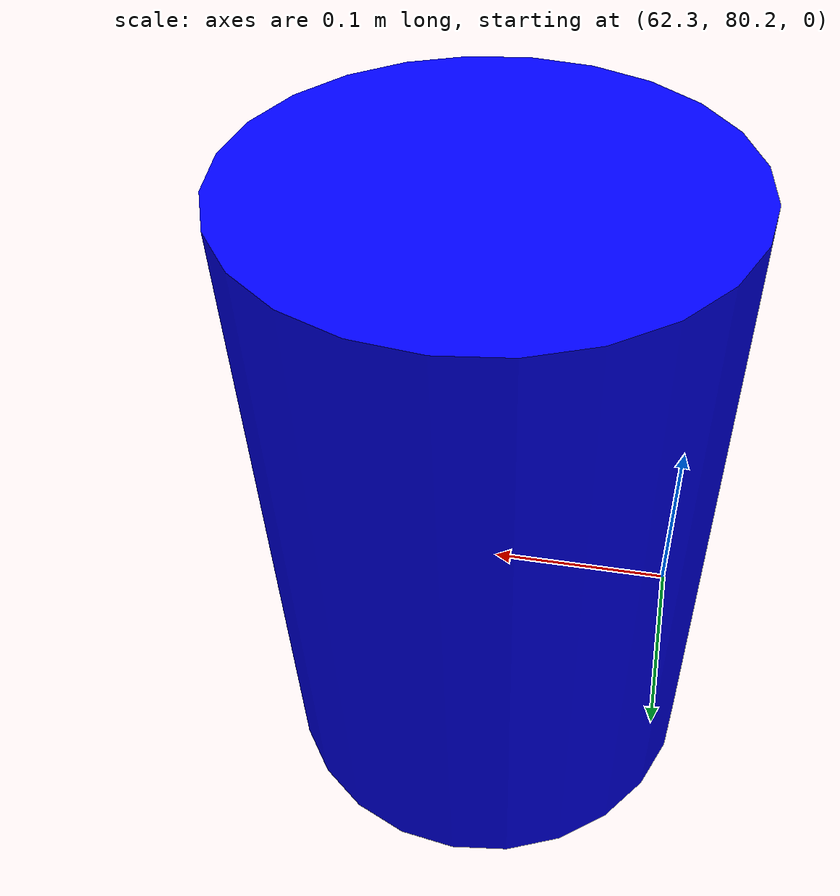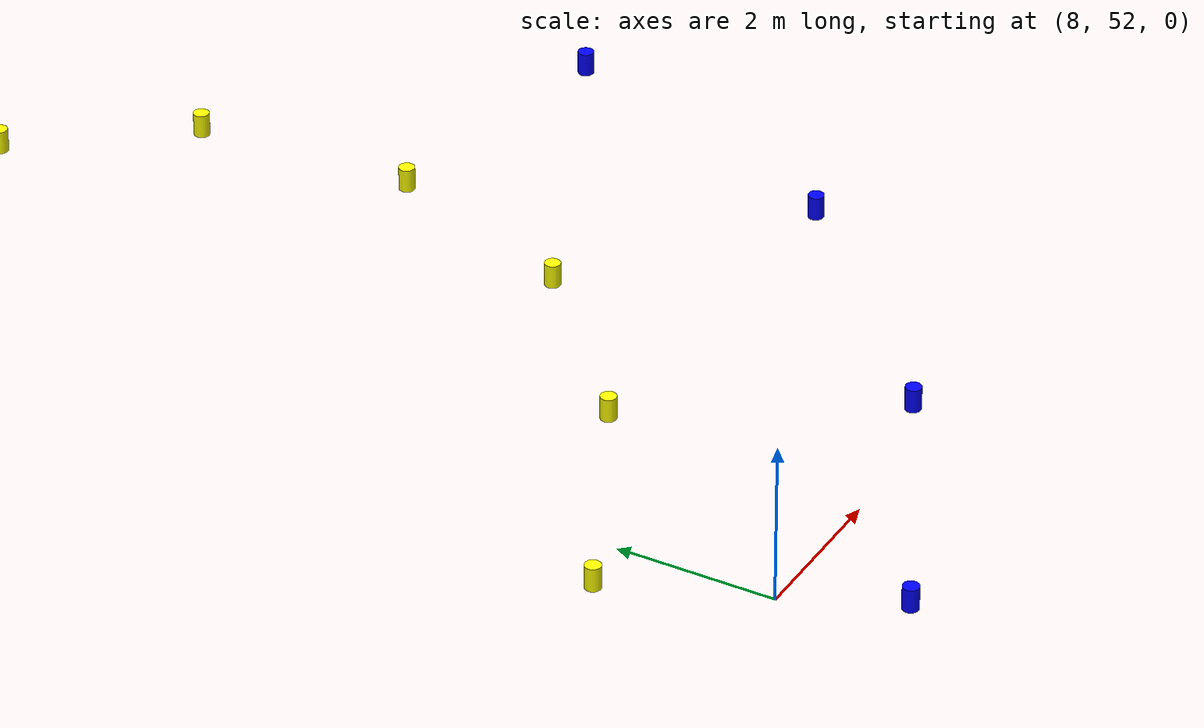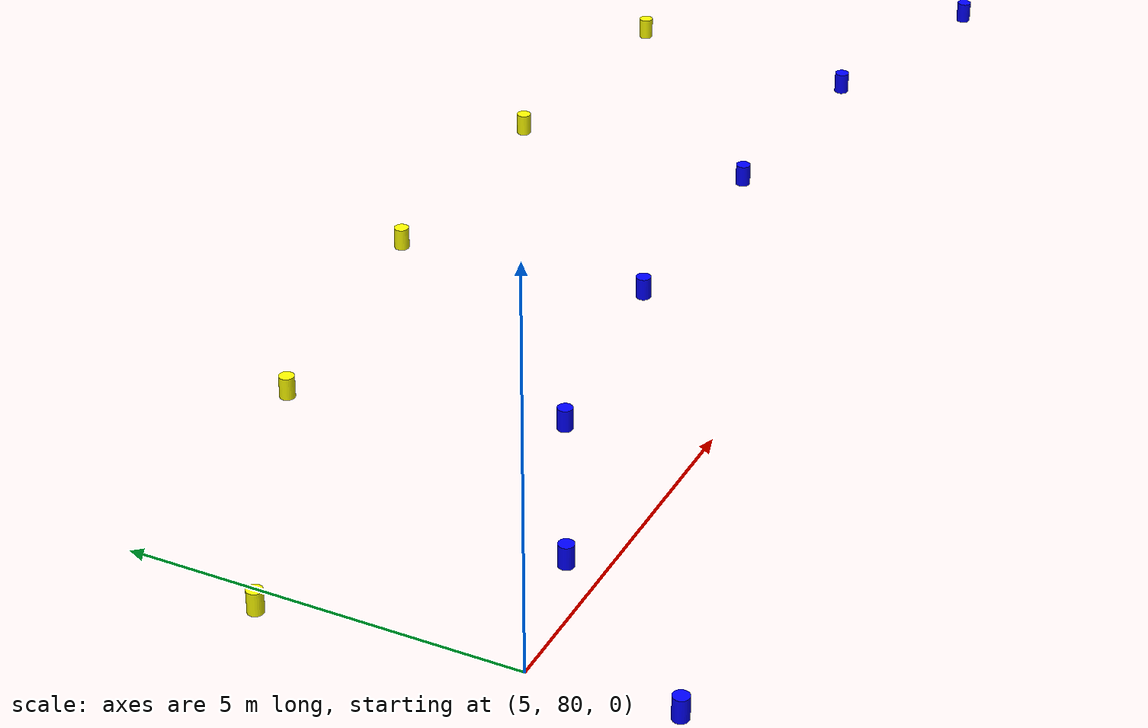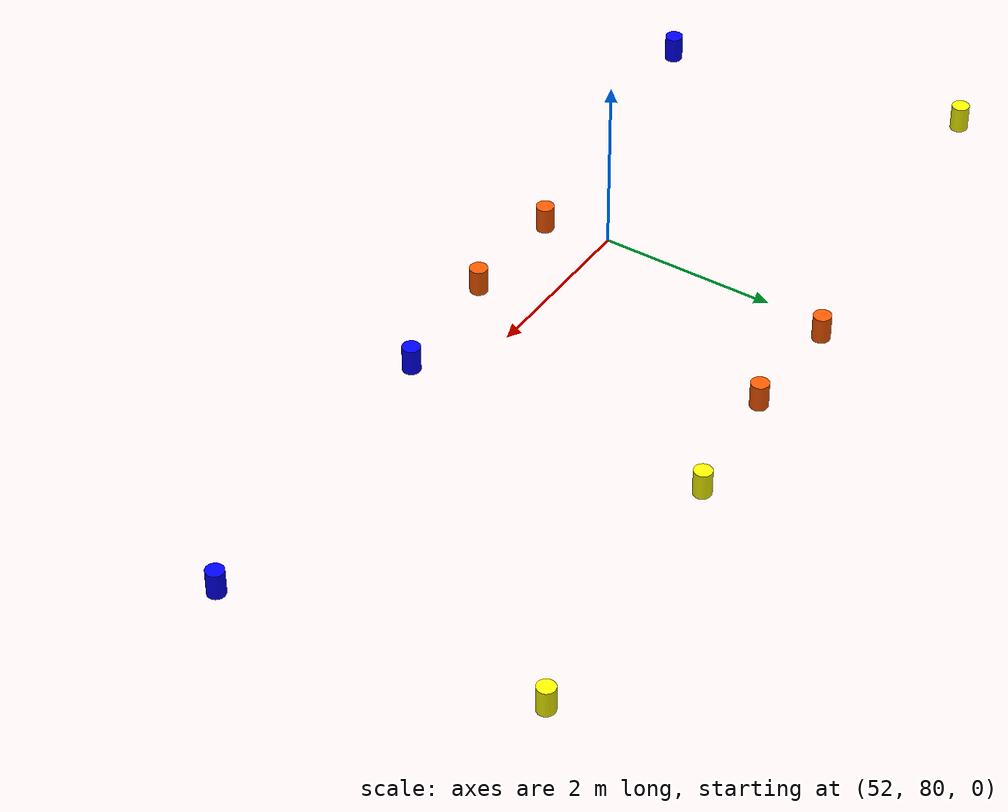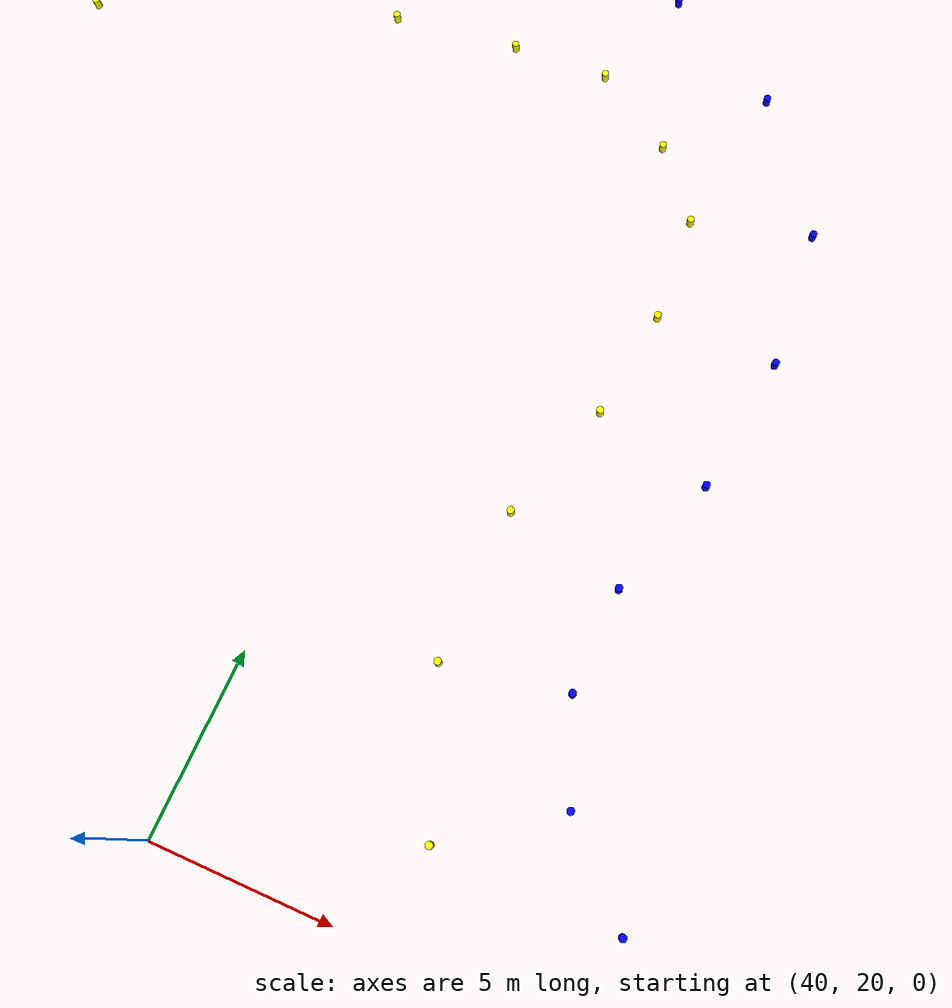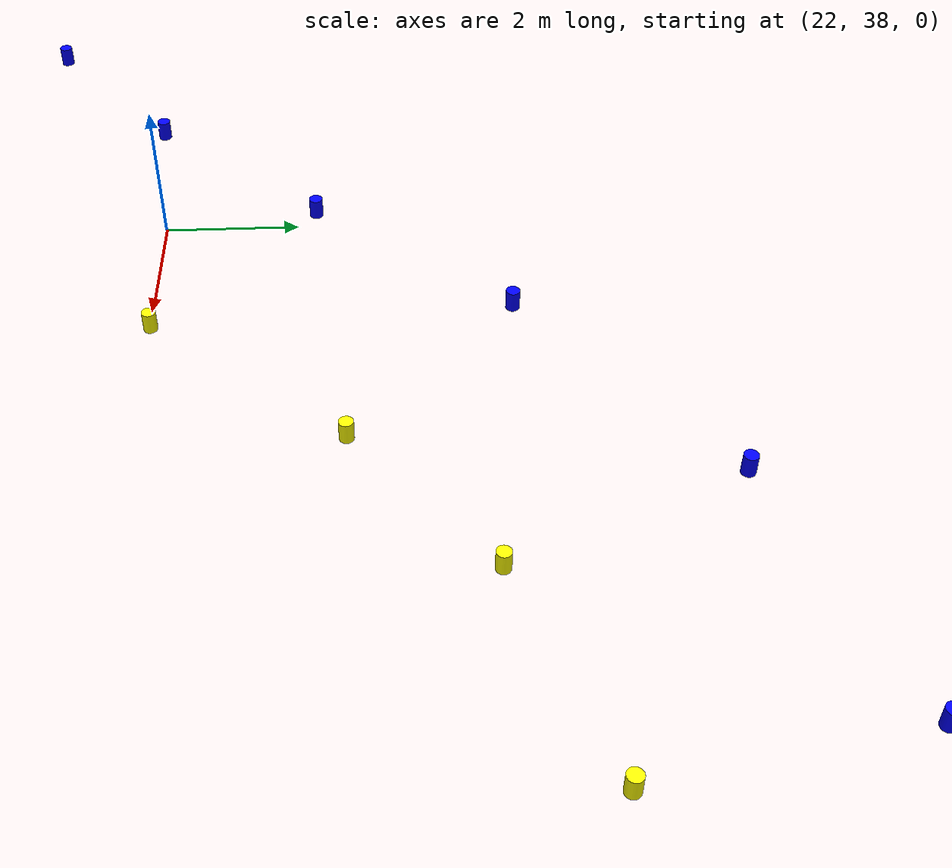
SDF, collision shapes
<?xml version="1.0"?>
<sdf version="1.7">
  <model name="track_competitionmap3">
    <static>true</static>

    <include>
      <uri>model://cone_yellow</uri>
      <name>cone_yellow_001</name>
      <pose>54.953 82.950 0.000 0 0 0.000</pose>
    </include>
    <include>
      <uri>model://cone_yellow</uri>
      <name>cone_yellow_002</name>
      <pose>58.274 83.264 0.000 0 0 0.000</pose>
    </include>
    <include>
      <uri>model://cone_yellow</uri>
      <name>cone_yellow_003</name>
      <pose>61.905 83.754 0.000 0 0 0.000</pose>
    </include>
    <include>
      <uri>model://cone_yellow</uri>
      <name>cone_yellow_004</name>
      <pose>65.535 84.262 0.000 0 0 0.000</pose>
    </include>
    <include>
      <uri>model://cone_yellow</uri>
      <name>cone_yellow_005</name>
      <pose>69.184 84.759 0.000 0 0 0.000</pose>
    </include>
    <include>
      <uri>model://cone_yellow</uri>
      <name>cone_yellow_006</name>
      <pose>72.850 85.223 0.000 0 0 0.000</pose>
    </include>
    <include>
      <uri>model://cone_yellow</uri>
      <name>cone_yellow_007</name>
      <pose>76.522 85.634 0.000 0 0 0.000</pose>
    </include>
    <include>
      <uri>model://cone_yellow</uri>
      <name>cone_yellow_008</name>
      <pose>80.190 85.964 0.000 0 0 0.000</pose>
    </include>
    <include>
      <uri>model://cone_yellow</uri>
      <name>cone_yellow_009</name>
      <pose>83.930 86.172 0.000 0 0 0.000</pose>
    </include>
    <include>
      <uri>model://cone_yellow</uri>
      <name>cone_yellow_010</name>
      <pose>87.726 86.154 0.000 0 0 0.000</pose>
    </include>
    <include>
      <uri>model://cone_yellow</uri>
      <name>cone_yellow_011</name>
      <pose>91.672 85.581 0.000 0 0 0.000</pose>
    </include>
    <include>
      <uri>model://cone_yellow</uri>
      <name>cone_yellow_012</name>
      <pose>95.307 84.546 0.000 0 0 0.000</pose>
    </include>
    <include>
      <uri>model://cone_yellow</uri>
      <name>cone_yellow_013</name>
      <pose>98.966 82.929 0.000 0 0 0.000</pose>
    </include>
    <include>
      <uri>model://cone_yellow</uri>
      <name>cone_yellow_014</name>
      <pose>102.146 80.327 0.000 0 0 0.000</pose>
    </include>
    <include>
      <uri>model://cone_yellow</uri>
      <name>cone_yellow_015</name>
      <pose>104.691 77.249 0.000 0 0 0.000</pose>
    </include>
    <include>
      <uri>model://cone_yellow</uri>
      <name>cone_yellow_016</name>
      <pose>106.264 73.316 0.000 0 0 0.000</pose>
    </include>
    <include>
      <uri>model://cone_yellow</uri>
      <name>cone_yellow_017</name>
      <pose>106.670 69.363 0.000 0 0 0.000</pose>
    </include>
    <include>
      <uri>model://cone_yellow</uri>
      <name>cone_yellow_018</name>
      <pose>106.411 65.431 0.000 0 0 0.000</pose>
    </include>
    <include>
      <uri>model://cone_yellow</uri>
      <name>cone_yellow_019</name>
      <pose>105.710 61.725 0.000 0 0 0.000</pose>
    </include>
    <include>
      <uri>model://cone_yellow</uri>
      <name>cone_yellow_020</name>
      <pose>104.862 58.125 0.000 0 0 0.000</pose>
    </include>
    <include>
      <uri>model://cone_yellow</uri>
      <name>cone_yellow_021</name>
      <pose>103.995 54.582 0.000 0 0 0.000</pose>
    </include>
    <include>
      <uri>model://cone_yellow</uri>
      <name>cone_yellow_022</name>
      <pose>103.295 51.147 0.000 0 0 0.000</pose>
    </include>
    <include>
      <uri>model://cone_yellow</uri>
      <name>cone_yellow_023</name>
      <pose>102.834 47.591 0.000 0 0 0.000</pose>
    </include>
    <include>
      <uri>model://cone_yellow</uri>
      <name>cone_yellow_024</name>
      <pose>102.096 43.692 0.000 0 0 0.000</pose>
    </include>
    <include>
      <uri>model://cone_yellow</uri>
      <name>cone_yellow_025</name>
      <pose>99.857 39.902 0.000 0 0 0.000</pose>
    </include>
    <include>
      <uri>model://cone_yellow</uri>
      <name>cone_yellow_026</name>
      <pose>96.774 37.388 0.000 0 0 0.000</pose>
    </include>
    <include>
      <uri>model://cone_yellow</uri>
      <name>cone_yellow_027</name>
      <pose>93.807 35.191 0.000 0 0 0.000</pose>
    </include>
    <include>
      <uri>model://cone_yellow</uri>
      <name>cone_yellow_028</name>
      <pose>89.820 33.503 0.000 0 0 0.000</pose>
    </include>
    <include>
      <uri>model://cone_yellow</uri>
      <name>cone_yellow_029</name>
      <pose>85.585 33.740 0.000 0 0 0.000</pose>
    </include>
    <include>
      <uri>model://cone_yellow</uri>
      <name>cone_yellow_030</name>
      <pose>82.455 33.970 0.000 0 0 0.000</pose>
    </include>
    <include>
      <uri>model://cone_yellow</uri>
      <name>cone_yellow_031</name>
      <pose>79.788 32.875 0.000 0 0 0.000</pose>
    </include>
    <include>
      <uri>model://cone_yellow</uri>
      <name>cone_yellow_032</name>
      <pose>77.029 30.887 0.000 0 0 0.000</pose>
    </include>
    <include>
      <uri>model://cone_yellow</uri>
      <name>cone_yellow_033</name>
      <pose>74.434 28.543 0.000 0 0 0.000</pose>
    </include>
    <include>
      <uri>model://cone_yellow</uri>
      <name>cone_yellow_034</name>
      <pose>72.369 26.116 0.000 0 0 0.000</pose>
    </include>
    <include>
      <uri>model://cone_yellow</uri>
      <name>cone_yellow_035</name>
      <pose>70.844 22.994 0.000 0 0 0.000</pose>
    </include>
    <include>
      <uri>model://cone_yellow</uri>
      <name>cone_yellow_036</name>
      <pose>68.550 19.424 0.000 0 0 0.000</pose>
    </include>
    <include>
      <uri>model://cone_yellow</uri>
      <name>cone_yellow_037</name>
      <pose>64.732 17.259 0.000 0 0 0.000</pose>
    </include>
    <include>
      <uri>model://cone_yellow</uri>
      <name>cone_yellow_038</name>
      <pose>60.807 16.366 0.000 0 0 0.000</pose>
    </include>
    <include>
      <uri>model://cone_yellow</uri>
      <name>cone_yellow_039</name>
      <pose>56.724 16.354 0.000 0 0 0.000</pose>
    </include>
    <include>
      <uri>model://cone_yellow</uri>
      <name>cone_yellow_040</name>
      <pose>52.744 17.595 0.000 0 0 0.000</pose>
    </include>
    <include>
      <uri>model://cone_yellow</uri>
      <name>cone_yellow_041</name>
      <pose>49.323 19.665 0.000 0 0 0.000</pose>
    </include>
    <include>
      <uri>model://cone_yellow</uri>
      <name>cone_yellow_042</name>
      <pose>46.344 22.572 0.000 0 0 0.000</pose>
    </include>
    <include>
      <uri>model://cone_yellow</uri>
      <name>cone_yellow_043</name>
      <pose>44.678 26.651 0.000 0 0 0.000</pose>
    </include>
    <include>
      <uri>model://cone_yellow</uri>
      <name>cone_yellow_044</name>
      <pose>44.788 30.981 0.000 0 0 0.000</pose>
    </include>
    <include>
      <uri>model://cone_yellow</uri>
      <name>cone_yellow_045</name>
      <pose>45.890 34.479 0.000 0 0 0.000</pose>
    </include>
    <include>
      <uri>model://cone_yellow</uri>
      <name>cone_yellow_046</name>
      <pose>46.293 37.699 0.000 0 0 0.000</pose>
    </include>
    <include>
      <uri>model://cone_yellow</uri>
      <name>cone_yellow_047</name>
      <pose>46.069 40.834 0.000 0 0 0.000</pose>
    </include>
    <include>
      <uri>model://cone_yellow</uri>
      <name>cone_yellow_048</name>
      <pose>44.447 42.809 0.000 0 0 0.000</pose>
    </include>
    <include>
      <uri>model://cone_yellow</uri>
      <name>cone_yellow_049</name>
      <pose>41.973 44.404 0.000 0 0 0.000</pose>
    </include>
    <include>
      <uri>model://cone_yellow</uri>
      <name>cone_yellow_050</name>
      <pose>39.091 44.315 0.000 0 0 0.000</pose>
    </include>
    <include>
      <uri>model://cone_yellow</uri>
      <name>cone_yellow_051</name>
      <pose>35.345 43.888 0.000 0 0 0.000</pose>
    </include>
    <include>
      <uri>model://cone_yellow</uri>
      <name>cone_yellow_052</name>
      <pose>31.952 43.726 0.000 0 0 0.000</pose>
    </include>
    <include>
      <uri>model://cone_yellow</uri>
      <name>cone_yellow_053</name>
      <pose>28.941 42.630 0.000 0 0 0.000</pose>
    </include>
    <include>
      <uri>model://cone_yellow</uri>
      <name>cone_yellow_054</name>
      <pose>26.678 40.779 0.000 0 0 0.000</pose>
    </include>
    <include>
      <uri>model://cone_yellow</uri>
      <name>cone_yellow_055</name>
      <pose>24.370 38.021 0.000 0 0 0.000</pose>
    </include>
    <include>
      <uri>model://cone_yellow</uri>
      <name>cone_yellow_056</name>
      <pose>21.778 35.188 0.000 0 0 0.000</pose>
    </include>
    <include>
      <uri>model://cone_yellow</uri>
      <name>cone_yellow_057</name>
      <pose>18.583 32.701 0.000 0 0 0.000</pose>
    </include>
    <include>
      <uri>model://cone_yellow</uri>
      <name>cone_yellow_058</name>
      <pose>14.620 31.198 0.000 0 0 0.000</pose>
    </include>
    <include>
      <uri>model://cone_yellow</uri>
      <name>cone_yellow_059</name>
      <pose>10.348 31.230 0.000 0 0 0.000</pose>
    </include>
    <include>
      <uri>model://cone_yellow</uri>
      <name>cone_yellow_060</name>
      <pose>6.435 32.463 0.000 0 0 0.000</pose>
    </include>
    <include>
      <uri>model://cone_yellow</uri>
      <name>cone_yellow_061</name>
      <pose>2.991 34.705 0.000 0 0 0.000</pose>
    </include>
    <include>
      <uri>model://cone_yellow</uri>
      <name>cone_yellow_062</name>
      <pose>0.280 37.812 0.000 0 0 0.000</pose>
    </include>
    <include>
      <uri>model://cone_yellow</uri>
      <name>cone_yellow_063</name>
      <pose>-1.455 41.612 0.000 0 0 0.000</pose>
    </include>
    <include>
      <uri>model://cone_yellow</uri>
      <name>cone_yellow_064</name>
      <pose>-1.791 45.935 0.000 0 0 0.000</pose>
    </include>
    <include>
      <uri>model://cone_yellow</uri>
      <name>cone_yellow_065</name>
      <pose>0.227 50.161 0.000 0 0 0.000</pose>
    </include>
    <include>
      <uri>model://cone_yellow</uri>
      <name>cone_yellow_066</name>
      <pose>3.808 52.450 0.000 0 0 0.000</pose>
    </include>
    <include>
      <uri>model://cone_yellow</uri>
      <name>cone_yellow_067</name>
      <pose>7.233 53.869 0.000 0 0 0.000</pose>
    </include>
    <include>
      <uri>model://cone_yellow</uri>
      <name>cone_yellow_068</name>
      <pose>10.239 55.363 0.000 0 0 0.000</pose>
    </include>
    <include>
      <uri>model://cone_yellow</uri>
      <name>cone_yellow_069</name>
      <pose>12.399 57.334 0.000 0 0 0.000</pose>
    </include>
    <include>
      <uri>model://cone_yellow</uri>
      <name>cone_yellow_070</name>
      <pose>13.413 59.947 0.000 0 0 0.000</pose>
    </include>
    <include>
      <uri>model://cone_yellow</uri>
      <name>cone_yellow_071</name>
      <pose>13.277 62.802 0.000 0 0 0.000</pose>
    </include>
    <include>
      <uri>model://cone_yellow</uri>
      <name>cone_yellow_072</name>
      <pose>11.754 64.748 0.000 0 0 0.000</pose>
    </include>
    <include>
      <uri>model://cone_yellow</uri>
      <name>cone_yellow_073</name>
      <pose>8.858 66.227 0.000 0 0 0.000</pose>
    </include>
    <include>
      <uri>model://cone_yellow</uri>
      <name>cone_yellow_074</name>
      <pose>5.325 67.866 0.000 0 0 0.000</pose>
    </include>
    <include>
      <uri>model://cone_yellow</uri>
      <name>cone_yellow_075</name>
      <pose>2.123 71.221 0.000 0 0 0.000</pose>
    </include>
    <include>
      <uri>model://cone_yellow</uri>
      <name>cone_yellow_076</name>
      <pose>1.048 75.354 0.000 0 0 0.000</pose>
    </include>
    <include>
      <uri>model://cone_yellow</uri>
      <name>cone_yellow_077</name>
      <pose>1.913 79.790 0.000 0 0 0.000</pose>
    </include>
    <include>
      <uri>model://cone_yellow</uri>
      <name>cone_yellow_078</name>
      <pose>4.659 83.125 0.000 0 0 0.000</pose>
    </include>
    <include>
      <uri>model://cone_yellow</uri>
      <name>cone_yellow_079</name>
      <pose>8.580 85.097 0.000 0 0 0.000</pose>
    </include>
    <include>
      <uri>model://cone_yellow</uri>
      <name>cone_yellow_080</name>
      <pose>12.506 85.670 0.000 0 0 0.000</pose>
    </include>
    <include>
      <uri>model://cone_yellow</uri>
      <name>cone_yellow_081</name>
      <pose>16.307 85.744 0.000 0 0 0.000</pose>
    </include>
    <include>
      <uri>model://cone_yellow</uri>
      <name>cone_yellow_082</name>
      <pose>20.141 85.539 0.000 0 0 0.000</pose>
    </include>
    <include>
      <uri>model://cone_yellow</uri>
      <name>cone_yellow_083</name>
      <pose>23.979 84.597 0.000 0 0 0.000</pose>
    </include>
    <include>
      <uri>model://cone_yellow</uri>
      <name>cone_yellow_084</name>
      <pose>27.493 83.389 0.000 0 0 0.000</pose>
    </include>
    <include>
      <uri>model://cone_yellow</uri>
      <name>cone_yellow_085</name>
      <pose>30.903 82.204 0.000 0 0 0.000</pose>
    </include>
    <include>
      <uri>model://cone_yellow</uri>
      <name>cone_yellow_086</name>
      <pose>34.257 81.261 0.000 0 0 0.000</pose>
    </include>
    <include>
      <uri>model://cone_yellow</uri>
      <name>cone_yellow_087</name>
      <pose>37.560 80.856 0.000 0 0 0.000</pose>
    </include>
    <include>
      <uri>model://cone_yellow</uri>
      <name>cone_yellow_088</name>
      <pose>40.948 80.977 0.000 0 0 0.000</pose>
    </include>
    <include>
      <uri>model://cone_yellow</uri>
      <name>cone_yellow_089</name>
      <pose>44.393 81.533 0.000 0 0 0.000</pose>
    </include>
    <include>
      <uri>model://cone_yellow</uri>
      <name>cone_yellow_090</name>
      <pose>48.025 82.221 0.000 0 0 0.000</pose>
    </include>
    <include>
      <uri>model://cone_blue</uri>
      <name>cone_blue_001</name>
      <pose>54.961 79.450 0.000 0 0 0.000</pose>
    </include>
    <include>
      <uri>model://cone_blue</uri>
      <name>cone_blue_002</name>
      <pose>58.712 79.792 0.000 0 0 0.000</pose>
    </include>
    <include>
      <uri>model://cone_blue</uri>
      <name>cone_blue_003</name>
      <pose>62.389 80.287 0.000 0 0 0.000</pose>
    </include>
    <include>
      <uri>model://cone_blue</uri>
      <name>cone_blue_004</name>
      <pose>66.018 80.795 0.000 0 0 0.000</pose>
    </include>
    <include>
      <uri>model://cone_blue</uri>
      <name>cone_blue_005</name>
      <pose>69.643 81.289 0.000 0 0 0.000</pose>
    </include>
    <include>
      <uri>model://cone_blue</uri>
      <name>cone_blue_006</name>
      <pose>73.268 81.749 0.000 0 0 0.000</pose>
    </include>
    <include>
      <uri>model://cone_blue</uri>
      <name>cone_blue_007</name>
      <pose>76.878 82.152 0.000 0 0 0.000</pose>
    </include>
    <include>
      <uri>model://cone_blue</uri>
      <name>cone_blue_008</name>
      <pose>80.454 82.474 0.000 0 0 0.000</pose>
    </include>
    <include>
      <uri>model://cone_blue</uri>
      <name>cone_blue_009</name>
      <pose>84.042 82.673 0.000 0 0 0.000</pose>
    </include>
    <include>
      <uri>model://cone_blue</uri>
      <name>cone_blue_010</name>
      <pose>87.545 82.659 0.000 0 0 0.000</pose>
    </include>
    <include>
      <uri>model://cone_blue</uri>
      <name>cone_blue_011</name>
      <pose>90.842 82.181 0.000 0 0 0.000</pose>
    </include>
    <include>
      <uri>model://cone_blue</uri>
      <name>cone_blue_012</name>
      <pose>94.185 81.231 0.000 0 0 0.000</pose>
    </include>
    <include>
      <uri>model://cone_blue</uri>
      <name>cone_blue_013</name>
      <pose>97.188 79.915 0.000 0 0 0.000</pose>
    </include>
    <include>
      <uri>model://cone_blue</uri>
      <name>cone_blue_014</name>
      <pose>99.604 77.920 0.000 0 0 0.000</pose>
    </include>
    <include>
      <uri>model://cone_blue</uri>
      <name>cone_blue_015</name>
      <pose>101.726 75.388 0.000 0 0 0.000</pose>
    </include>
    <include>
      <uri>model://cone_blue</uri>
      <name>cone_blue_016</name>
      <pose>102.843 72.580 0.000 0 0 0.000</pose>
    </include>
    <include>
      <uri>model://cone_blue</uri>
      <name>cone_blue_017</name>
      <pose>103.170 69.297 0.000 0 0 0.000</pose>
    </include>
    <include>
      <uri>model://cone_blue</uri>
      <name>cone_blue_018</name>
      <pose>102.948 65.943 0.000 0 0 0.000</pose>
    </include>
    <include>
      <uri>model://cone_blue</uri>
      <name>cone_blue_019</name>
      <pose>102.291 62.476 0.000 0 0 0.000</pose>
    </include>
    <include>
      <uri>model://cone_blue</uri>
      <name>cone_blue_020</name>
      <pose>101.463 58.960 0.000 0 0 0.000</pose>
    </include>
    <include>
      <uri>model://cone_blue</uri>
      <name>cone_blue_021</name>
      <pose>100.589 55.388 0.000 0 0 0.000</pose>
    </include>
    <include>
      <uri>model://cone_blue</uri>
      <name>cone_blue_022</name>
      <pose>99.839 51.700 0.000 0 0 0.000</pose>
    </include>
    <include>
      <uri>model://cone_blue</uri>
      <name>cone_blue_023</name>
      <pose>99.358 48.007 0.000 0 0 0.000</pose>
    </include>
    <include>
      <uri>model://cone_blue</uri>
      <name>cone_blue_024</name>
      <pose>98.761 44.752 0.000 0 0 0.000</pose>
    </include>
    <include>
      <uri>model://cone_blue</uri>
      <name>cone_blue_025</name>
      <pose>97.322 42.316 0.000 0 0 0.000</pose>
    </include>
    <include>
      <uri>model://cone_blue</uri>
      <name>cone_blue_026</name>
      <pose>94.742 40.238 0.000 0 0 0.000</pose>
    </include>
    <include>
      <uri>model://cone_blue</uri>
      <name>cone_blue_027</name>
      <pose>91.848 38.091 0.000 0 0 0.000</pose>
    </include>
    <include>
      <uri>model://cone_blue</uri>
      <name>cone_blue_028</name>
      <pose>89.173 36.942 0.000 0 0 0.000</pose>
    </include>
    <include>
      <uri>model://cone_blue</uri>
      <name>cone_blue_029</name>
      <pose>86.164 37.191 0.000 0 0 0.000</pose>
    </include>
    <include>
      <uri>model://cone_blue</uri>
      <name>cone_blue_030</name>
      <pose>82.033 37.444 0.000 0 0 0.000</pose>
    </include>
    <include>
      <uri>model://cone_blue</uri>
      <name>cone_blue_031</name>
      <pose>77.976 35.869 0.000 0 0 0.000</pose>
    </include>
    <include>
      <uri>model://cone_blue</uri>
      <name>cone_blue_032</name>
      <pose>74.808 33.592 0.000 0 0 0.000</pose>
    </include>
    <include>
      <uri>model://cone_blue</uri>
      <name>cone_blue_033</name>
      <pose>71.978 31.036 0.000 0 0 0.000</pose>
    </include>
    <include>
      <uri>model://cone_blue</uri>
      <name>cone_blue_034</name>
      <pose>69.364 27.909 0.000 0 0 0.000</pose>
    </include>
    <include>
      <uri>model://cone_blue</uri>
      <name>cone_blue_035</name>
      <pose>67.673 24.475 0.000 0 0 0.000</pose>
    </include>
    <include>
      <uri>model://cone_blue</uri>
      <name>cone_blue_036</name>
      <pose>66.088 21.912 0.000 0 0 0.000</pose>
    </include>
    <include>
      <uri>model://cone_blue</uri>
      <name>cone_blue_037</name>
      <pose>63.583 20.565 0.000 0 0 0.000</pose>
    </include>
    <include>
      <uri>model://cone_blue</uri>
      <name>cone_blue_038</name>
      <pose>60.391 19.841 0.000 0 0 0.000</pose>
    </include>
    <include>
      <uri>model://cone_blue</uri>
      <name>cone_blue_039</name>
      <pose>57.187 19.823 0.000 0 0 0.000</pose>
    </include>
    <include>
      <uri>model://cone_blue</uri>
      <name>cone_blue_040</name>
      <pose>54.244 20.757 0.000 0 0 0.000</pose>
    </include>
    <include>
      <uri>model://cone_blue</uri>
      <name>cone_blue_041</name>
      <pose>51.422 22.465 0.000 0 0 0.000</pose>
    </include>
    <include>
      <uri>model://cone_blue</uri>
      <name>cone_blue_042</name>
      <pose>49.178 24.625 0.000 0 0 0.000</pose>
    </include>
    <include>
      <uri>model://cone_blue</uri>
      <name>cone_blue_043</name>
      <pose>48.126 27.248 0.000 0 0 0.000</pose>
    </include>
    <include>
      <uri>model://cone_blue</uri>
      <name>cone_blue_044</name>
      <pose>48.193 30.170 0.000 0 0 0.000</pose>
    </include>
    <include>
      <uri>model://cone_blue</uri>
      <name>cone_blue_045</name>
      <pose>49.285 33.629 0.000 0 0 0.000</pose>
    </include>
    <include>
      <uri>model://cone_blue</uri>
      <name>cone_blue_046</name>
      <pose>49.793 37.628 0.000 0 0 0.000</pose>
    </include>
    <include>
      <uri>model://cone_blue</uri>
      <name>cone_blue_047</name>
      <pose>49.445 41.755 0.000 0 0 0.000</pose>
    </include>
    <include>
      <uri>model://cone_blue</uri>
      <name>cone_blue_048</name>
      <pose>46.713 45.477 0.000 0 0 0.000</pose>
    </include>
    <include>
      <uri>model://cone_blue</uri>
      <name>cone_blue_049</name>
      <pose>43.038 47.738 0.000 0 0 0.000</pose>
    </include>
    <include>
      <uri>model://cone_blue</uri>
      <name>cone_blue_050</name>
      <pose>38.663 47.789 0.000 0 0 0.000</pose>
    </include>
    <include>
      <uri>model://cone_blue</uri>
      <name>cone_blue_051</name>
      <pose>35.140 47.382 0.000 0 0 0.000</pose>
    </include>
    <include>
      <uri>model://cone_blue</uri>
      <name>cone_blue_052</name>
      <pose>31.283 47.161 0.000 0 0 0.000</pose>
    </include>
    <include>
      <uri>model://cone_blue</uri>
      <name>cone_blue_053</name>
      <pose>27.468 45.805 0.000 0 0 0.000</pose>
    </include>
    <include>
      <uri>model://cone_blue</uri>
      <name>cone_blue_054</name>
      <pose>24.066 43.108 0.000 0 0 0.000</pose>
    </include>
    <include>
      <uri>model://cone_blue</uri>
      <name>cone_blue_055</name>
      <pose>21.685 40.267 0.000 0 0 0.000</pose>
    </include>
    <include>
      <uri>model://cone_blue</uri>
      <name>cone_blue_056</name>
      <pose>19.348 37.707 0.000 0 0 0.000</pose>
    </include>
    <include>
      <uri>model://cone_blue</uri>
      <name>cone_blue_057</name>
      <pose>16.800 35.713 0.000 0 0 0.000</pose>
    </include>
    <include>
      <uri>model://cone_blue</uri>
      <name>cone_blue_058</name>
      <pose>14.000 34.642 0.000 0 0 0.000</pose>
    </include>
    <include>
      <uri>model://cone_blue</uri>
      <name>cone_blue_059</name>
      <pose>10.954 34.677 0.000 0 0 0.000</pose>
    </include>
    <include>
      <uri>model://cone_blue</uri>
      <name>cone_blue_060</name>
      <pose>7.925 35.630 0.000 0 0 0.000</pose>
    </include>
    <include>
      <uri>model://cone_blue</uri>
      <name>cone_blue_061</name>
      <pose>5.284 37.349 0.000 0 0 0.000</pose>
    </include>
    <include>
      <uri>model://cone_blue</uri>
      <name>cone_blue_062</name>
      <pose>3.212 39.722 0.000 0 0 0.000</pose>
    </include>
    <include>
      <uri>model://cone_blue</uri>
      <name>cone_blue_063</name>
      <pose>1.918 42.548 0.000 0 0 0.000</pose>
    </include>
    <include>
      <uri>model://cone_blue</uri>
      <name>cone_blue_064</name>
      <pose>1.676 45.450 0.000 0 0 0.000</pose>
    </include>
    <include>
      <uri>model://cone_blue</uri>
      <name>cone_blue_065</name>
      <pose>2.697 47.682 0.000 0 0 0.000</pose>
    </include>
    <include>
      <uri>model://cone_blue</uri>
      <name>cone_blue_066</name>
      <pose>5.251 49.261 0.000 0 0 0.000</pose>
    </include>
    <include>
      <uri>model://cone_blue</uri>
      <name>cone_blue_067</name>
      <pose>8.581 50.639 0.000 0 0 0.000</pose>
    </include>
    <include>
      <uri>model://cone_blue</uri>
      <name>cone_blue_068</name>
      <pose>12.113 52.407 0.000 0 0 0.000</pose>
    </include>
    <include>
      <uri>model://cone_blue</uri>
      <name>cone_blue_069</name>
      <pose>15.265 55.324 0.000 0 0 0.000</pose>
    </include>
    <include>
      <uri>model://cone_blue</uri>
      <name>cone_blue_070</name>
      <pose>16.872 59.413 0.000 0 0 0.000</pose>
    </include>
    <include>
      <uri>model://cone_blue</uri>
      <name>cone_blue_071</name>
      <pose>16.595 63.915 0.000 0 0 0.000</pose>
    </include>
    <include>
      <uri>model://cone_blue</uri>
      <name>cone_blue_072</name>
      <pose>13.797 67.590 0.000 0 0 0.000</pose>
    </include>
    <include>
      <uri>model://cone_blue</uri>
      <name>cone_blue_073</name>
      <pose>10.210 69.456 0.000 0 0 0.000</pose>
    </include>
    <include>
      <uri>model://cone_blue</uri>
      <name>cone_blue_074</name>
      <pose>7.101 70.882 0.000 0 0 0.000</pose>
    </include>
    <include>
      <uri>model://cone_blue</uri>
      <name>cone_blue_075</name>
      <pose>5.314 72.660 0.000 0 0 0.000</pose>
    </include>
    <include>
      <uri>model://cone_blue</uri>
      <name>cone_blue_076</name>
      <pose>4.540 75.597 0.000 0 0 0.000</pose>
    </include>
    <include>
      <uri>model://cone_blue</uri>
      <name>cone_blue_077</name>
      <pose>5.038 78.214 0.000 0 0 0.000</pose>
    </include>
    <include>
      <uri>model://cone_blue</uri>
      <name>cone_blue_078</name>
      <pose>6.921 80.454 0.000 0 0 0.000</pose>
    </include>
    <include>
      <uri>model://cone_blue</uri>
      <name>cone_blue_079</name>
      <pose>9.441 81.705 0.000 0 0 0.000</pose>
    </include>
    <include>
      <uri>model://cone_blue</uri>
      <name>cone_blue_080</name>
      <pose>12.737 82.178 0.000 0 0 0.000</pose>
    </include>
    <include>
      <uri>model://cone_blue</uri>
      <name>cone_blue_081</name>
      <pose>16.243 82.244 0.000 0 0 0.000</pose>
    </include>
    <include>
      <uri>model://cone_blue</uri>
      <name>cone_blue_082</name>
      <pose>19.653 82.073 0.000 0 0 0.000</pose>
    </include>
    <include>
      <uri>model://cone_blue</uri>
      <name>cone_blue_083</name>
      <pose>22.921 81.261 0.000 0 0 0.000</pose>
    </include>
    <include>
      <uri>model://cone_blue</uri>
      <name>cone_blue_084</name>
      <pose>26.316 80.092 0.000 0 0 0.000</pose>
    </include>
    <include>
      <uri>model://cone_blue</uri>
      <name>cone_blue_085</name>
      <pose>29.816 78.877 0.000 0 0 0.000</pose>
    </include>
    <include>
      <uri>model://cone_blue</uri>
      <name>cone_blue_086</name>
      <pose>33.504 77.843 0.000 0 0 0.000</pose>
    </include>
    <include>
      <uri>model://cone_blue</uri>
      <name>cone_blue_087</name>
      <pose>37.436 77.358 0.000 0 0 0.000</pose>
    </include>
    <include>
      <uri>model://cone_blue</uri>
      <name>cone_blue_088</name>
      <pose>41.322 77.497 0.000 0 0 0.000</pose>
    </include>
    <include>
      <uri>model://cone_blue</uri>
      <name>cone_blue_089</name>
      <pose>45.065 78.098 0.000 0 0 0.000</pose>
    </include>
    <include>
      <uri>model://cone_blue</uri>
      <name>cone_blue_090</name>
      <pose>48.606 78.770 0.000 0 0 0.000</pose>
    </include>
    <include>
      <uri>model://cone_orange</uri>
      <name>cone_orange_001</name>
      <pose>52.192 79.300 0.000 0 0 0.000</pose>
    </include>
    <include>
      <uri>model://cone_orange</uri>
      <name>cone_orange_002</name>
      <pose>52.192 82.752 0.000 0 0 0.000</pose>
    </include>
    <include>
      <uri>model://cone_orange</uri>
      <name>cone_orange_003</name>
      <pose>53.492 82.752 0.000 0 0 0.000</pose>
    </include>
    <include>
      <uri>model://cone_orange</uri>
      <name>cone_orange_004</name>
      <pose>53.492 79.300 0.000 0 0 0.000</pose>
    </include>

  </model>
</sdf>

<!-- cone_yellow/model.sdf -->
<sdf version="1.6">
  <model name="cone_yellow">
    <static>1</static>
    <link name="link">

      <visual name="visual">
        <pose>0 0 0 0 0 0</pose>
        <geometry>
          <mesh>
            <uri>model://cone_yellow/meshes/cone.stl</uri>
            <scale>0.005 0.005 0.005</scale>
          </mesh>
        </geometry>
        <material>
          <ambient>1.0 1.0 0.0 1</ambient>
          <diffuse>1.0 1.0 0.0 1</diffuse>
        </material>
      </visual>

      <collision name="collision">
        <pose>0 0 0.15 0 0 0</pose>
        <geometry>
          <cylinder>
            <radius>0.1</radius>
            <length>0.3</length>
          </cylinder>
        </geometry>
        <surface>
          <friction>
            <ode>
              <mu>0.9</mu> <mu2>0.9</mu2> </ode>
          </friction>
        </surface>
      </collision>

      <inertial>
        <pose>0 0 0.05 0 0 0</pose>
        <mass>1</mass>
        <inertia>
          <ixx>0.01</ixx> <iyy>0.01</iyy> <izz>0.005</izz>
          <ixy>0.0</ixy> <ixz>0.0</ixz> <iyz>0.0</iyz>
        </inertia>
      </inertial>

    </link>
  </model>
</sdf>

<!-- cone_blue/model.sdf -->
<sdf version="1.6">
  <model name="cone_blue">
    <static>1</static>
    <link name="link">

      <inertial>
        <pose>0 0 0.05 0 0 0</pose> <mass>1</mass>
        <inertia>
          <ixx>0.01</ixx> <iyy>0.01</iyy> <izz>0.005</izz>
          <ixy>0.0</ixy> <ixz>0.0</ixz> <iyz>0.0</iyz>
        </inertia>
      </inertial>

      <collision name="collision">
        <pose>0 0 0.15 0 0 0</pose>
        <geometry>
          <cylinder>
            <radius>0.1</radius>
            <length>0.3</length>
          </cylinder>
        </geometry>
      </collision>

      <visual name="visual">
        <pose>0 0 0 0 0 0</pose>
        <geometry>
          <mesh>
            <uri>model://cone_blue/meshes/cone.stl</uri>
            <scale>0.005 0.005 0.005</scale>
          </mesh>
        </geometry>
        <material>
          <ambient>0.0 0.0 1.0 1</ambient>
          <diffuse>0.0 0.0 1.0 1</diffuse>
        </material>
      </visual>

    </link>
  </model>
</sdf>

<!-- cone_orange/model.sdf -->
<sdf version="1.6">
  <model name="cone_orange">
    <static>1</static>
    <link name="link">

      <visual name="visual">
        <pose>0 0 0 0 0 0</pose>
        <geometry>
          <mesh>
            <uri>model://cone_orange/meshes/cone.stl</uri>
            <scale>0.005 0.005 0.005</scale>
          </mesh>
        </geometry>
        <material>
          <ambient>1.0 0.35 0.0 1</ambient>
          <diffuse>1.0 0.35 0.0 1</diffuse>
        </material>
      </visual>

      <collision name="collision">
        <pose>0 0 0.15 0 0 0</pose>
        <geometry>
          <cylinder>
            <radius>0.1</radius>
            <length>0.3</length>
          </cylinder>
        </geometry>
        <surface>
          <friction>
            <ode>
              <mu>0.9</mu> <mu2>0.9</mu2>
            </ode>
          </friction>
        </surface>
      </collision>

      <inertial>
        <pose>0 0 0.05 0 0 0</pose> <mass>1.0</mass>
        <inertia>
          <ixx>0.01</ixx> <iyy>0.01</iyy> <izz>0.005</izz>
          <ixy>0.0</ixy> <ixz>0.0</ixz> <iyz>0.0</iyz>
        </inertia>
      </inertial>

    </link>
  </model>
</sdf>
